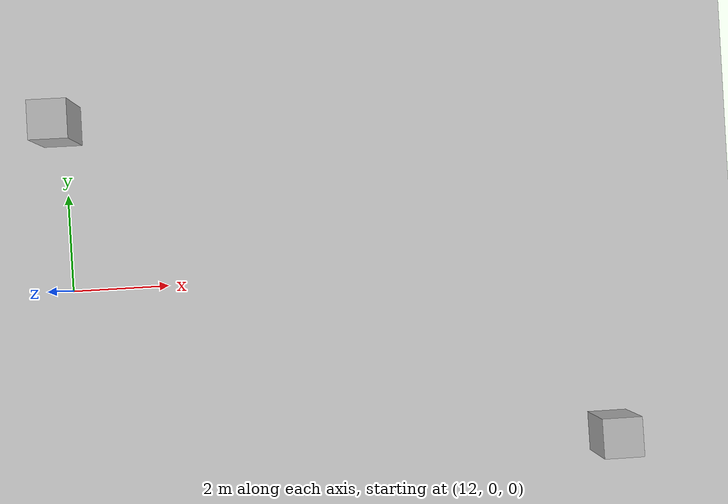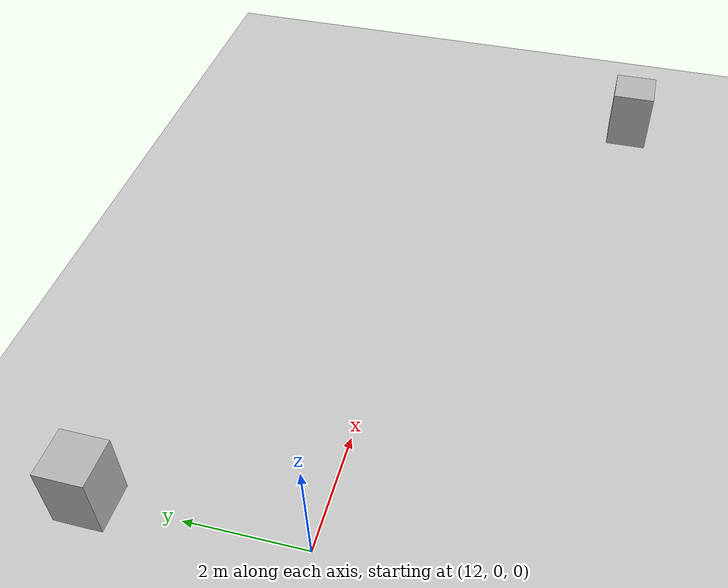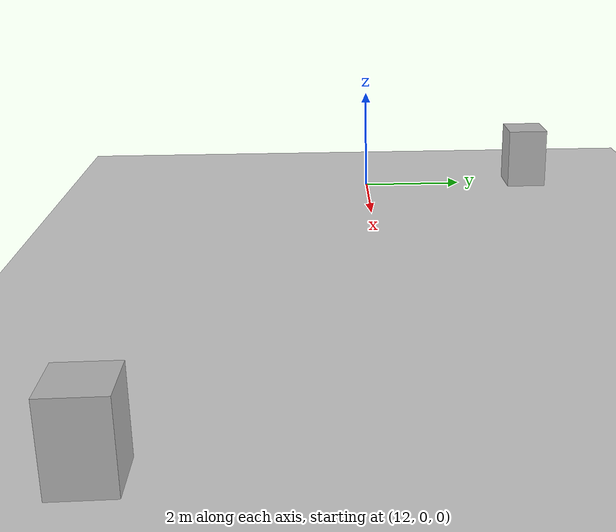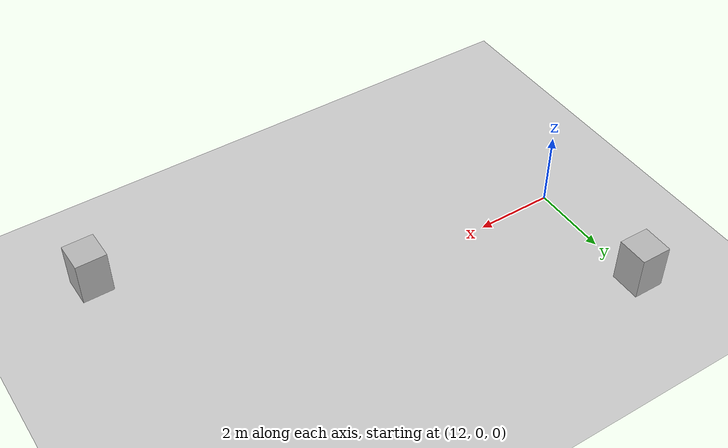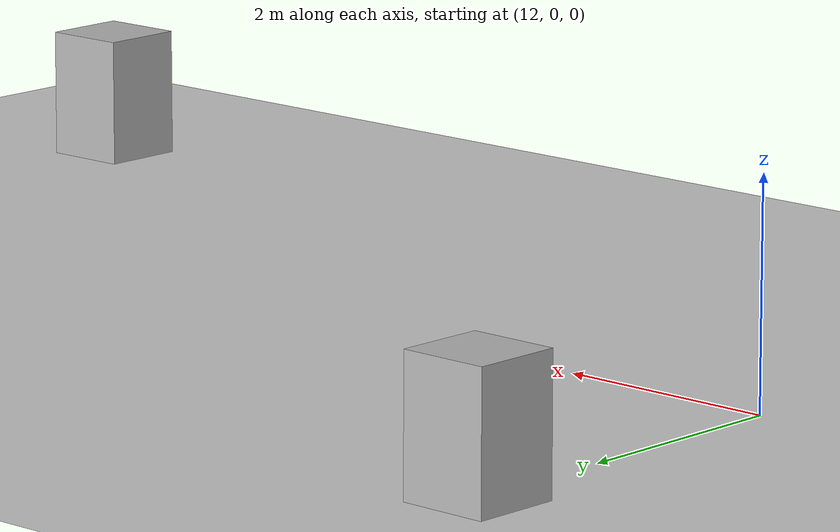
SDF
<?xml version="1.0"?>
<sdf version="1.6">
  <world name="v2-04e4-cruise-s4731">
    <gravity>0 0 -9.81</gravity>
    <physics name="v2_deterministic" type="ode">
      <max_step_size>0.002</max_step_size>
      <real_time_update_rate>500</real_time_update_rate>
    </physics>
    <include>
      <uri>model://sun</uri>
    </include>
    <include>
      <uri>model://ground_plane</uri>
    </include>
    <model name="cruise-left">
      <static>true</static>
      <pose>11.952227851 3.446401973 0.600000000 0 0 -0.005667947</pose>
      <link name="link">
        <collision name="collision">
          <geometry>
            <box>
              <size>0.800000 0.800000 1.200000</size>
            </box>
          </geometry>
        </collision>
        <visual name="visual">
          <geometry>
            <box>
              <size>0.800000 0.800000 1.200000</size>
            </box>
          </geometry>
        </visual>
      </link>
    </model>
    <model name="cruise-right">
      <static>true</static>
      <pose>23.036321476 -3.535749273 0.600000000 0 0 0.009323695</pose>
      <link name="link">
        <collision name="collision">
          <geometry>
            <box>
              <size>0.800000 0.800000 1.200000</size>
            </box>
          </geometry>
        </collision>
        <visual name="visual">
          <geometry>
            <box>
              <size>0.800000 0.800000 1.200000</size>
            </box>
          </geometry>
        </visual>
      </link>
    </model>
  </world>
</sdf>
